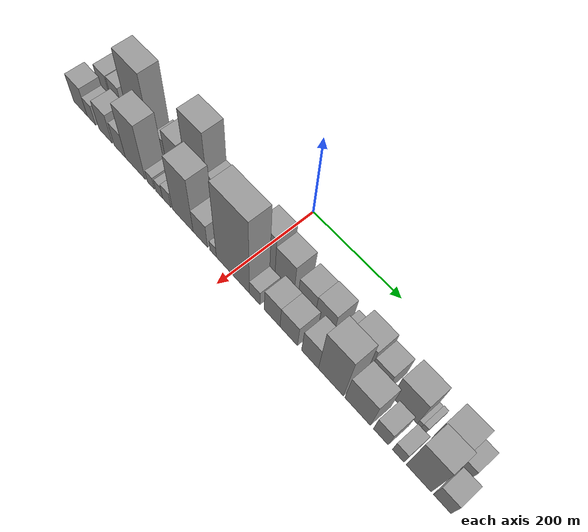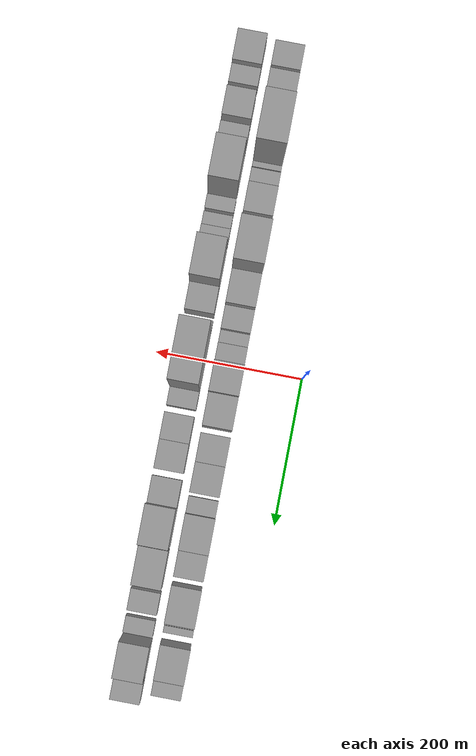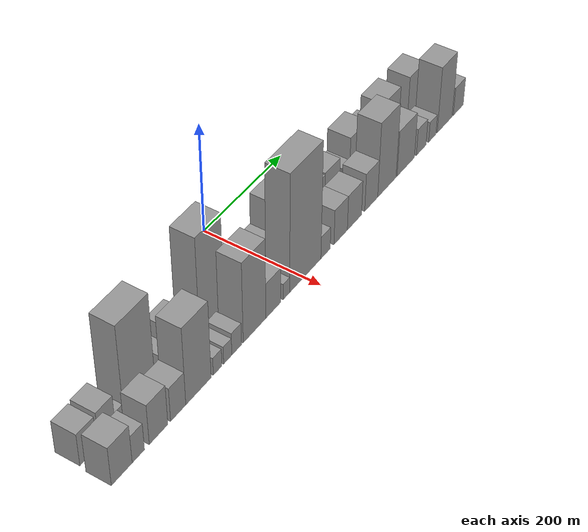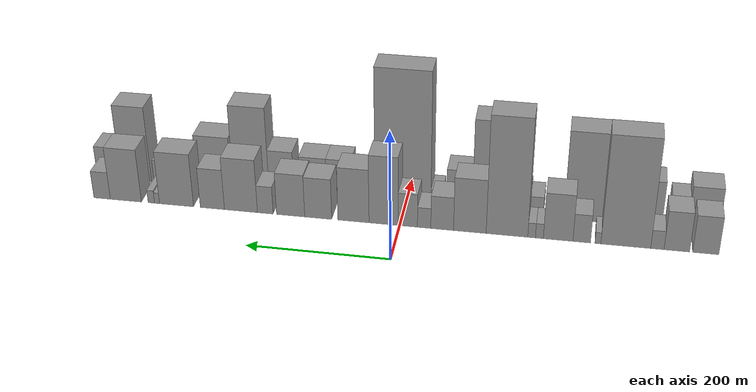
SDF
<sdf version="1.6">
 <world name="default">
  <scene>
   <sky><clouds><speed>12</speed></clouds></sky>
   <ambient>0.4 0.4 0.4 1</ambient>
   <background>0.7 0.7 0.7 1</background>
   <shadows>1</shadows>
  </scene>
  <gravity>0 0 -9.8066</gravity>
  <magnetic_field>6e-06 2.3e-05 -4.2e-05</magnetic_field>
  <physics default="0" name="default_physics" type="ode">
   <ode>
    <solver>
     <type>quick</type>
     <iters>10</iters>
     <sor>1.0</sor>
     <use_dynamic_moi_rescaling>0</use_dynamic_moi_rescaling>
    </solver>
    <constraints>
     <cfm>0</cfm>
     <erp>0.2</erp>
     <contact_max_correcting_vel>100</contact_max_correcting_vel>
     <contact_surface_layer>0.001</contact_surface_layer>
    </constraints>
   </ode>
   <max_step_size>0.004</max_step_size>
   <real_time_factor>1</real_time_factor>
   <real_time_update_rate>250</real_time_update_rate>
  </physics>
  <light name="sun" type="directional">
   <pose>0 0 10 0 0 0</pose>
   <diffuse>0.8 0.8 0.8 1</diffuse>
   <specular>0.2 0.2 0.2 1</specular>
   <attenuation>
    <range>1000</range>
    <constant>0.9</constant>
    <linear>0.01</linear>
    <quadratic>0.001</quadratic>
   </attenuation>
   <direction>-0.5 0.1 -0.9</direction>
  </light>
  <model name="building_1">
   <static>1</static>
   <pose>100.0000 -418.6548 0 0.000000 0.000000 0.000000</pose>
   <link name="link">
    <pose>0 0 30.00 0 0 0</pose>
    <collision name="collision"><geometry><box><size>40.0000 34.6905 60.0000</size></box></geometry></collision>
    <visual name="visual">
     <cast_shadows>0</cast_shadows>
     <geometry><box><size>40.0000 34.6905 60.0000</size></box></geometry>
     <material>
      <script>
       <uri>model://grey_wall/materials/scripts</uri>
       <uri>model://grey_wall/materials/textures</uri>
       <name>vrc/grey_wall</name>
      </script>
     </material>
    </visual>
   </link>
  </model>
  <model name="building_2">
   <static>1</static>
   <pose>100.0000 -380.2245 0 0.000000 0.000000 0.000000</pose>
   <link name="link">
    <pose>0 0 31.50 0 0 0</pose>
    <collision name="collision"><geometry><box><size>40.0000 34.1700 63.0000</size></box></geometry></collision>
    <visual name="visual">
     <cast_shadows>0</cast_shadows>
     <geometry><box><size>40.0000 34.1700 63.0000</size></box></geometry>
     <material>
      <script>
       <uri>model://grey_wall/materials/scripts</uri>
       <uri>model://grey_wall/materials/textures</uri>
       <name>vrc/grey_wall</name>
      </script>
     </material>
    </visual>
   </link>
  </model>
  <model name="building_3">
   <static>1</static>
   <pose>100.0000 -354.2400 0 0.000000 0.000000 0.000000</pose>
   <link name="link">
    <pose>0 0 15.00 0 0 0</pose>
    <collision name="collision"><geometry><box><size>40.0000 17.7990 30.0000</size></box></geometry></collision>
    <visual name="visual">
     <cast_shadows>0</cast_shadows>
     <geometry><box><size>40.0000 17.7990 30.0000</size></box></geometry>
     <material>
      <script>
       <uri>model://grey_wall/materials/scripts</uri>
       <uri>model://grey_wall/materials/textures</uri>
       <name>vrc/grey_wall</name>
      </script>
     </material>
    </visual>
   </link>
  </model>
  <model name="building_4">
   <static>1</static>
   <pose>100.0000 -311.7143 0 0.000000 0.000000 0.000000</pose>
   <link name="link">
    <pose>0 0 87.00 0 0 0</pose>
    <collision name="collision"><geometry><box><size>40.0000 67.2525 174.0000</size></box></geometry></collision>
    <visual name="visual">
     <cast_shadows>0</cast_shadows>
     <geometry><box><size>40.0000 67.2525 174.0000</size></box></geometry>
     <material>
      <script>
       <uri>model://grey_wall/materials/scripts</uri>
       <uri>model://grey_wall/materials/textures</uri>
       <name>vrc/grey_wall</name>
      </script>
     </material>
    </visual>
   </link>
  </model>
  <model name="building_5">
   <static>1</static>
   <pose>100.0000 -274.0974 0 0.000000 0.000000 0.000000</pose>
   <link name="link">
    <pose>0 0 9.00 0 0 0</pose>
    <collision name="collision"><geometry><box><size>40.0000 7.9812 18.0000</size></box></geometry></collision>
    <visual name="visual">
     <cast_shadows>0</cast_shadows>
     <geometry><box><size>40.0000 7.9812 18.0000</size></box></geometry>
     <material>
      <script>
       <uri>model://grey_wall/materials/scripts</uri>
       <uri>model://grey_wall/materials/textures</uri>
       <name>vrc/grey_wall</name>
      </script>
     </material>
    </visual>
   </link>
  </model>
  <model name="building_6">
   <static>1</static>
   <pose>100.0000 -252.1353 0 0.000000 0.000000 0.000000</pose>
   <link name="link">
    <pose>0 0 22.50 0 0 0</pose>
    <collision name="collision"><geometry><box><size>40.0000 23.9430 45.0000</size></box></geometry></collision>
    <visual name="visual">
     <cast_shadows>0</cast_shadows>
     <geometry><box><size>40.0000 23.9430 45.0000</size></box></geometry>
     <material>
      <script>
       <uri>model://grey_wall/materials/scripts</uri>
       <uri>model://grey_wall/materials/textures</uri>
       <name>vrc/grey_wall</name>
      </script>
     </material>
    </visual>
   </link>
  </model>
  <model name="building_7">
   <static>1</static>
   <pose>100.0000 -219.9529 0 0.000000 0.000000 0.000000</pose>
   <link name="link">
    <pose>0 0 37.50 0 0 0</pose>
    <collision name="collision"><geometry><box><size>40.0000 40.4219 75.0000</size></box></geometry></collision>
    <visual name="visual">
     <cast_shadows>0</cast_shadows>
     <geometry><box><size>40.0000 40.4219 75.0000</size></box></geometry>
     <material>
      <script>
       <uri>model://grey_wall/materials/scripts</uri>
       <uri>model://grey_wall/materials/textures</uri>
       <name>vrc/grey_wall</name>
      </script>
     </material>
    </visual>
   </link>
  </model>
  <model name="building_8">
   <static>1</static>
   <pose>100.0000 -194.3136 0 0.000000 0.000000 0.000000</pose>
   <link name="link">
    <pose>0 0 12.00 0 0 0</pose>
    <collision name="collision"><geometry><box><size>40.0000 10.8566 24.0000</size></box></geometry></collision>
    <visual name="visual">
     <cast_shadows>0</cast_shadows>
     <geometry><box><size>40.0000 10.8566 24.0000</size></box></geometry>
     <material>
      <script>
       <uri>model://grey_wall/materials/scripts</uri>
       <uri>model://grey_wall/materials/textures</uri>
       <name>vrc/grey_wall</name>
      </script>
     </material>
    </visual>
   </link>
  </model>
  <model name="building_9">
   <static>1</static>
   <pose>100.0000 -183.6284 0 0.000000 0.000000 0.000000</pose>
   <link name="link">
    <pose>0 0 12.00 0 0 0</pose>
    <collision name="collision"><geometry><box><size>40.0000 10.5139 24.0000</size></box></geometry></collision>
    <visual name="visual">
     <cast_shadows>0</cast_shadows>
     <geometry><box><size>40.0000 10.5139 24.0000</size></box></geometry>
     <material>
      <script>
       <uri>model://grey_wall/materials/scripts</uri>
       <uri>model://grey_wall/materials/textures</uri>
       <name>vrc/grey_wall</name>
      </script>
     </material>
    </visual>
   </link>
  </model>
  <model name="building_10">
   <static>1</static>
   <pose>100.0000 -149.5996 0 0.000000 0.000000 0.000000</pose>
   <link name="link">
    <pose>0 0 94.50 0 0 0</pose>
    <collision name="collision"><geometry><box><size>40.0000 57.5438 189.0000</size></box></geometry></collision>
    <visual name="visual">
     <cast_shadows>0</cast_shadows>
     <geometry><box><size>40.0000 57.5438 189.0000</size></box></geometry>
     <material>
      <script>
       <uri>model://grey_wall/materials/scripts</uri>
       <uri>model://grey_wall/materials/textures</uri>
       <name>vrc/grey_wall</name>
      </script>
     </material>
    </visual>
   </link>
  </model>
  <model name="building_11">
   <static>1</static>
   <pose>100.0000 -98.1262 0 0.000000 0.000000 0.000000</pose>
   <link name="link">
    <pose>0 0 43.50 0 0 0</pose>
    <collision name="collision"><geometry><box><size>40.0000 45.4030 87.0000</size></box></geometry></collision>
    <visual name="visual">
     <cast_shadows>0</cast_shadows>
     <geometry><box><size>40.0000 45.4030 87.0000</size></box></geometry>
     <material>
      <script>
       <uri>model://grey_wall/materials/scripts</uri>
       <uri>model://grey_wall/materials/textures</uri>
       <name>vrc/grey_wall</name>
      </script>
     </material>
    </visual>
   </link>
  </model>
  <model name="building_12">
   <static>1</static>
   <pose>100.0000 -59.4996 0 0.000000 0.000000 0.000000</pose>
   <link name="link">
    <pose>0 0 27.00 0 0 0</pose>
    <collision name="collision"><geometry><box><size>40.0000 31.8502 54.0000</size></box></geometry></collision>
    <visual name="visual">
     <cast_shadows>0</cast_shadows>
     <geometry><box><size>40.0000 31.8502 54.0000</size></box></geometry>
     <material>
      <script>
       <uri>model://grey_wall/materials/scripts</uri>
       <uri>model://grey_wall/materials/textures</uri>
       <name>vrc/grey_wall</name>
      </script>
     </material>
    </visual>
   </link>
  </model>
  <model name="building_13">
   <static>1</static>
   <pose>100.0000 -34.1499 0 0.000000 0.000000 0.000000</pose>
   <link name="link">
    <pose>0 0 16.50 0 0 0</pose>
    <collision name="collision"><geometry><box><size>40.0000 18.8490 33.0000</size></box></geometry></collision>
    <visual name="visual">
     <cast_shadows>0</cast_shadows>
     <geometry><box><size>40.0000 18.8490 33.0000</size></box></geometry>
     <material>
      <script>
       <uri>model://grey_wall/materials/scripts</uri>
       <uri>model://grey_wall/materials/textures</uri>
       <name>vrc/grey_wall</name>
      </script>
     </material>
    </visual>
   </link>
  </model>
  <model name="building_14">
   <static>1</static>
   <pose>100.0000 -11.1573 0 0.000000 0.000000 0.000000</pose>
   <link name="link">
    <pose>0 0 27.00 0 0 0</pose>
    <collision name="collision"><geometry><box><size>40.0000 27.1362 54.0000</size></box></geometry></collision>
    <visual name="visual">
     <cast_shadows>0</cast_shadows>
     <geometry><box><size>40.0000 27.1362 54.0000</size></box></geometry>
     <material>
      <script>
       <uri>model://grey_wall/materials/scripts</uri>
       <uri>model://grey_wall/materials/textures</uri>
       <name>vrc/grey_wall</name>
      </script>
     </material>
    </visual>
   </link>
  </model>
  <model name="building_15">
   <static>1</static>
   <pose>100.0000 23.0573 0 0.000000 0.000000 0.000000</pose>
   <link name="link">
    <pose>0 0 55.50 0 0 0</pose>
    <collision name="collision"><geometry><box><size>40.0000 41.2931 111.0000</size></box></geometry></collision>
    <visual name="visual">
     <cast_shadows>0</cast_shadows>
     <geometry><box><size>40.0000 41.2931 111.0000</size></box></geometry>
     <material>
      <script>
       <uri>model://grey_wall/materials/scripts</uri>
       <uri>model://grey_wall/materials/textures</uri>
       <name>vrc/grey_wall</name>
      </script>
     </material>
    </visual>
   </link>
  </model>
  <model name="building_16">
   <static>1</static>
   <pose>100.0000 65.8963 0 0.000000 0.000000 0.000000</pose>
   <link name="link">
    <pose>0 0 43.50 0 0 0</pose>
    <collision name="collision"><geometry><box><size>40.0000 44.3848 87.0000</size></box></geometry></collision>
    <visual name="visual">
     <cast_shadows>0</cast_shadows>
     <geometry><box><size>40.0000 44.3848 87.0000</size></box></geometry>
     <material>
      <script>
       <uri>model://grey_wall/materials/scripts</uri>
       <uri>model://grey_wall/materials/textures</uri>
       <name>vrc/grey_wall</name>
      </script>
     </material>
    </visual>
   </link>
  </model>
  <model name="building_17">
   <static>1</static>
   <pose>100.0000 116.5243 0 0.000000 0.000000 0.000000</pose>
   <link name="link">
    <pose>0 0 33.00 0 0 0</pose>
    <collision name="collision"><geometry><box><size>40.0000 38.8712 66.0000</size></box></geometry></collision>
    <visual name="visual">
     <cast_shadows>0</cast_shadows>
     <geometry><box><size>40.0000 38.8712 66.0000</size></box></geometry>
     <material>
      <script>
       <uri>model://grey_wall/materials/scripts</uri>
       <uri>model://grey_wall/materials/textures</uri>
       <name>vrc/grey_wall</name>
      </script>
     </material>
    </visual>
   </link>
  </model>
  <model name="building_18">
   <static>1</static>
   <pose>100.0000 156.2910 0 0.000000 0.000000 0.000000</pose>
   <link name="link">
    <pose>0 0 34.50 0 0 0</pose>
    <collision name="collision"><geometry><box><size>40.0000 40.6621 69.0000</size></box></geometry></collision>
    <visual name="visual">
     <cast_shadows>0</cast_shadows>
     <geometry><box><size>40.0000 40.6621 69.0000</size></box></geometry>
     <material>
      <script>
       <uri>model://grey_wall/materials/scripts</uri>
       <uri>model://grey_wall/materials/textures</uri>
       <name>vrc/grey_wall</name>
      </script>
     </material>
    </visual>
   </link>
  </model>
  <model name="building_19">
   <static>1</static>
   <pose>100.0000 193.0398 0 0.000000 0.000000 0.000000</pose>
   <link name="link">
    <pose>0 0 22.50 0 0 0</pose>
    <collision name="collision"><geometry><box><size>40.0000 22.8355 45.0000</size></box></geometry></collision>
    <visual name="visual">
     <cast_shadows>0</cast_shadows>
     <geometry><box><size>40.0000 22.8355 45.0000</size></box></geometry>
     <material>
      <script>
       <uri>model://grey_wall/materials/scripts</uri>
       <uri>model://grey_wall/materials/textures</uri>
       <name>vrc/grey_wall</name>
      </script>
     </material>
    </visual>
   </link>
  </model>
  <model name="building_20">
   <static>1</static>
   <pose>100.0000 228.5631 0 0.000000 0.000000 0.000000</pose>
   <link name="link">
    <pose>0 0 43.50 0 0 0</pose>
    <collision name="collision"><geometry><box><size>40.0000 48.2111 87.0000</size></box></geometry></collision>
    <visual name="visual">
     <cast_shadows>0</cast_shadows>
     <geometry><box><size>40.0000 48.2111 87.0000</size></box></geometry>
     <material>
      <script>
       <uri>model://grey_wall/materials/scripts</uri>
       <uri>model://grey_wall/materials/textures</uri>
       <name>vrc/grey_wall</name>
      </script>
     </material>
    </visual>
   </link>
  </model>
  <model name="building_21">
   <static>1</static>
   <pose>100.0000 270.4774 0 0.000000 0.000000 0.000000</pose>
   <link name="link">
    <pose>0 0 33.00 0 0 0</pose>
    <collision name="collision"><geometry><box><size>40.0000 35.6177 66.0000</size></box></geometry></collision>
    <visual name="visual">
     <cast_shadows>0</cast_shadows>
     <geometry><box><size>40.0000 35.6177 66.0000</size></box></geometry>
     <material>
      <script>
       <uri>model://grey_wall/materials/scripts</uri>
       <uri>model://grey_wall/materials/textures</uri>
       <name>vrc/grey_wall</name>
      </script>
     </material>
    </visual>
   </link>
  </model>
  <model name="building_22">
   <static>1</static>
   <pose>100.0000 323.5534 0 0.000000 0.000000 0.000000</pose>
   <link name="link">
    <pose>0 0 43.50 0 0 0</pose>
    <collision name="collision"><geometry><box><size>40.0000 50.5343 87.0000</size></box></geometry></collision>
    <visual name="visual">
     <cast_shadows>0</cast_shadows>
     <geometry><box><size>40.0000 50.5343 87.0000</size></box></geometry>
     <material>
      <script>
       <uri>model://grey_wall/materials/scripts</uri>
       <uri>model://grey_wall/materials/textures</uri>
       <name>vrc/grey_wall</name>
      </script>
     </material>
    </visual>
   </link>
  </model>
  <model name="building_23">
   <static>1</static>
   <pose>100.0000 352.5017 0 0.000000 0.000000 0.000000</pose>
   <link name="link">
    <pose>0 0 9.00 0 0 0</pose>
    <collision name="collision"><geometry><box><size>40.0000 7.3623 18.0000</size></box></geometry></collision>
    <visual name="visual">
     <cast_shadows>0</cast_shadows>
     <geometry><box><size>40.0000 7.3623 18.0000</size></box></geometry>
     <material>
      <script>
       <uri>model://grey_wall/materials/scripts</uri>
       <uri>model://grey_wall/materials/textures</uri>
       <name>vrc/grey_wall</name>
      </script>
     </material>
    </visual>
   </link>
  </model>
  <model name="building_24">
   <static>1</static>
   <pose>100.0000 360.9782 0 0.000000 0.000000 0.000000</pose>
   <link name="link">
    <pose>0 0 10.50 0 0 0</pose>
    <collision name="collision"><geometry><box><size>40.0000 9.5906 21.0000</size></box></geometry></collision>
    <visual name="visual">
     <cast_shadows>0</cast_shadows>
     <geometry><box><size>40.0000 9.5906 21.0000</size></box></geometry>
     <material>
      <script>
       <uri>model://grey_wall/materials/scripts</uri>
       <uri>model://grey_wall/materials/textures</uri>
       <name>vrc/grey_wall</name>
      </script>
     </material>
    </visual>
   </link>
  </model>
  <model name="building_25">
   <static>1</static>
   <pose>100.0000 399.0694 0 0.000000 0.000000 0.000000</pose>
   <link name="link">
    <pose>0 0 43.50 0 0 0</pose>
    <collision name="collision"><geometry><box><size>40.0000 46.5919 87.0000</size></box></geometry></collision>
    <visual name="visual">
     <cast_shadows>0</cast_shadows>
     <geometry><box><size>40.0000 46.5919 87.0000</size></box></geometry>
     <material>
      <script>
       <uri>model://grey_wall/materials/scripts</uri>
       <uri>model://grey_wall/materials/textures</uri>
       <name>vrc/grey_wall</name>
      </script>
     </material>
    </visual>
   </link>
  </model>
  <model name="building_26">
   <static>1</static>
   <pose>100.0000 434.7052 0 0.000000 0.000000 0.000000</pose>
   <link name="link">
    <pose>0 0 22.50 0 0 0</pose>
    <collision name="collision"><geometry><box><size>40.0000 24.6798 45.0000</size></box></geometry></collision>
    <visual name="visual">
     <cast_shadows>0</cast_shadows>
     <geometry><box><size>40.0000 24.6798 45.0000</size></box></geometry>
     <material>
      <script>
       <uri>model://grey_wall/materials/scripts</uri>
       <uri>model://grey_wall/materials/textures</uri>
       <name>vrc/grey_wall</name>
      </script>
     </material>
    </visual>
   </link>
  </model>
  <model name="building_27">
   <static>1</static>
   <pose>152.0000 -417.7005 0 0.000000 0.000000 0.000000</pose>
   <link name="link">
    <pose>0 0 36.00 0 0 0</pose>
    <collision name="collision"><geometry><box><size>40.0000 42.5990 72.0000</size></box></geometry></collision>
    <visual name="visual">
     <cast_shadows>0</cast_shadows>
     <geometry><box><size>40.0000 42.5990 72.0000</size></box></geometry>
     <material>
      <script>
       <uri>model://grey_wall/materials/scripts</uri>
       <uri>model://grey_wall/materials/textures</uri>
       <name>vrc/grey_wall</name>
      </script>
     </material>
    </visual>
   </link>
  </model>
  <model name="building_28">
   <static>1</static>
   <pose>152.0000 -383.5710 0 0.000000 0.000000 0.000000</pose>
   <link name="link">
    <pose>0 0 25.50 0 0 0</pose>
    <collision name="collision"><geometry><box><size>40.0000 25.6600 51.0000</size></box></geometry></collision>
    <visual name="visual">
     <cast_shadows>0</cast_shadows>
     <geometry><box><size>40.0000 25.6600 51.0000</size></box></geometry>
     <material>
      <script>
       <uri>model://grey_wall/materials/scripts</uri>
       <uri>model://grey_wall/materials/textures</uri>
       <name>vrc/grey_wall</name>
      </script>
     </material>
    </visual>
   </link>
  </model>
  <model name="building_29">
   <static>1</static>
   <pose>152.0000 -340.9190 0 0.000000 0.000000 0.000000</pose>
   <link name="link">
    <pose>0 0 37.50 0 0 0</pose>
    <collision name="collision"><geometry><box><size>40.0000 39.6438 75.0000</size></box></geometry></collision>
    <visual name="visual">
     <cast_shadows>0</cast_shadows>
     <geometry><box><size>40.0000 39.6438 75.0000</size></box></geometry>
     <material>
      <script>
       <uri>model://grey_wall/materials/scripts</uri>
       <uri>model://grey_wall/materials/textures</uri>
       <name>vrc/grey_wall</name>
      </script>
     </material>
    </visual>
   </link>
  </model>
  <model name="building_30">
   <static>1</static>
   <pose>152.0000 -298.5035 0 0.000000 0.000000 0.000000</pose>
   <link name="link">
    <pose>0 0 31.50 0 0 0</pose>
    <collision name="collision"><geometry><box><size>40.0000 33.1872 63.0000</size></box></geometry></collision>
    <visual name="visual">
     <cast_shadows>0</cast_shadows>
     <geometry><box><size>40.0000 33.1872 63.0000</size></box></geometry>
     <material>
      <script>
       <uri>model://grey_wall/materials/scripts</uri>
       <uri>model://grey_wall/materials/textures</uri>
       <name>vrc/grey_wall</name>
      </script>
     </material>
    </visual>
   </link>
  </model>
  <model name="building_31">
   <static>1</static>
   <pose>152.0000 -253.5071 0 0.000000 0.000000 0.000000</pose>
   <link name="link">
    <pose>0 0 72.00 0 0 0</pose>
    <collision name="collision"><geometry><box><size>40.0000 56.8056 144.0000</size></box></geometry></collision>
    <visual name="visual">
     <cast_shadows>0</cast_shadows>
     <geometry><box><size>40.0000 56.8056 144.0000</size></box></geometry>
     <material>
      <script>
       <uri>model://grey_wall/materials/scripts</uri>
       <uri>model://grey_wall/materials/textures</uri>
       <name>vrc/grey_wall</name>
      </script>
     </material>
    </visual>
   </link>
  </model>
  <model name="building_32">
   <static>1</static>
   <pose>152.0000 -210.2083 0 0.000000 0.000000 0.000000</pose>
   <link name="link">
    <pose>0 0 16.50 0 0 0</pose>
    <collision name="collision"><geometry><box><size>40.0000 19.7921 33.0000</size></box></geometry></collision>
    <visual name="visual">
     <cast_shadows>0</cast_shadows>
     <geometry><box><size>40.0000 19.7921 33.0000</size></box></geometry>
     <material>
      <script>
       <uri>model://grey_wall/materials/scripts</uri>
       <uri>model://grey_wall/materials/textures</uri>
       <name>vrc/grey_wall</name>
      </script>
     </material>
    </visual>
   </link>
  </model>
  <model name="building_33">
   <static>1</static>
   <pose>152.0000 -186.8155 0 0.000000 0.000000 0.000000</pose>
   <link name="link">
    <pose>0 0 16.50 0 0 0</pose>
    <collision name="collision"><geometry><box><size>40.0000 18.9934 33.0000</size></box></geometry></collision>
    <visual name="visual">
     <cast_shadows>0</cast_shadows>
     <geometry><box><size>40.0000 18.9934 33.0000</size></box></geometry>
     <material>
      <script>
       <uri>model://grey_wall/materials/scripts</uri>
       <uri>model://grey_wall/materials/textures</uri>
       <name>vrc/grey_wall</name>
      </script>
     </material>
    </visual>
   </link>
  </model>
  <model name="building_34">
   <static>1</static>
   <pose>152.0000 -165.8773 0 0.000000 0.000000 0.000000</pose>
   <link name="link">
    <pose>0 0 21.00 0 0 0</pose>
    <collision name="collision"><geometry><box><size>40.0000 22.8831 42.0000</size></box></geometry></collision>
    <visual name="visual">
     <cast_shadows>0</cast_shadows>
     <geometry><box><size>40.0000 22.8831 42.0000</size></box></geometry>
     <material>
      <script>
       <uri>model://grey_wall/materials/scripts</uri>
       <uri>model://grey_wall/materials/textures</uri>
       <name>vrc/grey_wall</name>
      </script>
     </material>
    </visual>
   </link>
  </model>
  <model name="building_35">
   <static>1</static>
   <pose>152.0000 -123.1055 0 0.000000 0.000000 0.000000</pose>
   <link name="link">
    <pose>0 0 75.00 0 0 0</pose>
    <collision name="collision"><geometry><box><size>40.0000 54.6605 150.0000</size></box></geometry></collision>
    <visual name="visual">
     <cast_shadows>0</cast_shadows>
     <geometry><box><size>40.0000 54.6605 150.0000</size></box></geometry>
     <material>
      <script>
       <uri>model://grey_wall/materials/scripts</uri>
       <uri>model://grey_wall/materials/textures</uri>
       <name>vrc/grey_wall</name>
      </script>
     </material>
    </visual>
   </link>
  </model>
  <model name="building_36">
   <static>1</static>
   <pose>152.0000 -77.3040 0 0.000000 0.000000 0.000000</pose>
   <link name="link">
    <pose>0 0 33.00 0 0 0</pose>
    <collision name="collision"><geometry><box><size>40.0000 36.9426 66.0000</size></box></geometry></collision>
    <visual name="visual">
     <cast_shadows>0</cast_shadows>
     <geometry><box><size>40.0000 36.9426 66.0000</size></box></geometry>
     <material>
      <script>
       <uri>model://grey_wall/materials/scripts</uri>
       <uri>model://grey_wall/materials/textures</uri>
       <name>vrc/grey_wall</name>
      </script>
     </material>
    </visual>
   </link>
  </model>
  <model name="building_37">
   <static>1</static>
   <pose>152.0000 -44.6524 0 0.000000 0.000000 0.000000</pose>
   <link name="link">
    <pose>0 0 15.00 0 0 0</pose>
    <collision name="collision"><geometry><box><size>40.0000 16.3605 30.0000</size></box></geometry></collision>
    <visual name="visual">
     <cast_shadows>0</cast_shadows>
     <geometry><box><size>40.0000 16.3605 30.0000</size></box></geometry>
     <material>
      <script>
       <uri>model://grey_wall/materials/scripts</uri>
       <uri>model://grey_wall/materials/textures</uri>
       <name>vrc/grey_wall</name>
      </script>
     </material>
    </visual>
   </link>
  </model>
  <model name="building_38">
   <static>1</static>
   <pose>152.0000 3.8814 0 0.000000 0.000000 0.000000</pose>
   <link name="link">
    <pose>0 0 109.50 0 0 0</pose>
    <collision name="collision"><geometry><box><size>40.0000 80.7070 219.0000</size></box></geometry></collision>
    <visual name="visual">
     <cast_shadows>0</cast_shadows>
     <geometry><box><size>40.0000 80.7070 219.0000</size></box></geometry>
     <material>
      <script>
       <uri>model://grey_wall/materials/scripts</uri>
       <uri>model://grey_wall/materials/textures</uri>
       <name>vrc/grey_wall</name>
      </script>
     </material>
    </visual>
   </link>
  </model>
  <model name="building_39">
   <static>1</static>
   <pose>152.0000 56.6409 0 0.000000 0.000000 0.000000</pose>
   <link name="link">
    <pose>0 0 21.00 0 0 0</pose>
    <collision name="collision"><geometry><box><size>40.0000 24.8120 42.0000</size></box></geometry></collision>
    <visual name="visual">
     <cast_shadows>0</cast_shadows>
     <geometry><box><size>40.0000 24.8120 42.0000</size></box></geometry>
     <material>
      <script>
       <uri>model://grey_wall/materials/scripts</uri>
       <uri>model://grey_wall/materials/textures</uri>
       <name>vrc/grey_wall</name>
      </script>
     </material>
    </visual>
   </link>
  </model>
  <model name="building_40">
   <static>1</static>
   <pose>152.0000 97.1873 0 0.000000 0.000000 0.000000</pose>
   <link name="link">
    <pose>0 0 33.00 0 0 0</pose>
    <collision name="collision"><geometry><box><size>40.0000 36.2808 66.0000</size></box></geometry></collision>
    <visual name="visual">
     <cast_shadows>0</cast_shadows>
     <geometry><box><size>40.0000 36.2808 66.0000</size></box></geometry>
     <material>
      <script>
       <uri>model://grey_wall/materials/scripts</uri>
       <uri>model://grey_wall/materials/textures</uri>
       <name>vrc/grey_wall</name>
      </script>
     </material>
    </visual>
   </link>
  </model>
  <model name="building_41">
   <static>1</static>
   <pose>152.0000 134.9564 0 0.000000 0.000000 0.000000</pose>
   <link name="link">
    <pose>0 0 33.00 0 0 0</pose>
    <collision name="collision"><geometry><box><size>40.0000 39.2573 66.0000</size></box></geometry></collision>
    <visual name="visual">
     <cast_shadows>0</cast_shadows>
     <geometry><box><size>40.0000 39.2573 66.0000</size></box></geometry>
     <material>
      <script>
       <uri>model://grey_wall/materials/scripts</uri>
       <uri>model://grey_wall/materials/textures</uri>
       <name>vrc/grey_wall</name>
      </script>
     </material>
    </visual>
   </link>
  </model>
  <model name="building_42">
   <static>1</static>
   <pose>152.0000 181.9588 0 0.000000 0.000000 0.000000</pose>
   <link name="link">
    <pose>0 0 36.00 0 0 0</pose>
    <collision name="collision"><geometry><box><size>40.0000 36.7475 72.0000</size></box></geometry></collision>
    <visual name="visual">
     <cast_shadows>0</cast_shadows>
     <geometry><box><size>40.0000 36.7475 72.0000</size></box></geometry>
     <material>
      <script>
       <uri>model://grey_wall/materials/scripts</uri>
       <uri>model://grey_wall/materials/textures</uri>
       <name>vrc/grey_wall</name>
      </script>
     </material>
    </visual>
   </link>
  </model>
  <model name="building_43">
   <static>1</static>
   <pose>152.0000 226.8278 0 0.000000 0.000000 0.000000</pose>
   <link name="link">
    <pose>0 0 70.50 0 0 0</pose>
    <collision name="collision"><geometry><box><size>40.0000 52.9904 141.0000</size></box></geometry></collision>
    <visual name="visual">
     <cast_shadows>0</cast_shadows>
     <geometry><box><size>40.0000 52.9904 141.0000</size></box></geometry>
     <material>
      <script>
       <uri>model://grey_wall/materials/scripts</uri>
       <uri>model://grey_wall/materials/textures</uri>
       <name>vrc/grey_wall</name>
      </script>
     </material>
    </visual>
   </link>
  </model>
  <model name="building_44">
   <static>1</static>
   <pose>152.0000 282.2522 0 0.000000 0.000000 0.000000</pose>
   <link name="link">
    <pose>0 0 43.50 0 0 0</pose>
    <collision name="collision"><geometry><box><size>40.0000 51.8585 87.0000</size></box></geometry></collision>
    <visual name="visual">
     <cast_shadows>0</cast_shadows>
     <geometry><box><size>40.0000 51.8585 87.0000</size></box></geometry>
     <material>
      <script>
       <uri>model://grey_wall/materials/scripts</uri>
       <uri>model://grey_wall/materials/textures</uri>
       <name>vrc/grey_wall</name>
      </script>
     </material>
    </visual>
   </link>
  </model>
  <model name="building_45">
   <static>1</static>
   <pose>152.0000 328.8322 0 0.000000 0.000000 0.000000</pose>
   <link name="link">
    <pose>0 0 25.50 0 0 0</pose>
    <collision name="collision"><geometry><box><size>40.0000 29.3015 51.0000</size></box></geometry></collision>
    <visual name="visual">
     <cast_shadows>0</cast_shadows>
     <geometry><box><size>40.0000 29.3015 51.0000</size></box></geometry>
     <material>
      <script>
       <uri>model://grey_wall/materials/scripts</uri>
       <uri>model://grey_wall/materials/textures</uri>
       <name>vrc/grey_wall</name>
      </script>
     </material>
    </visual>
   </link>
  </model>
  <model name="building_46">
   <static>1</static>
   <pose>152.0000 362.7409 0 0.000000 0.000000 0.000000</pose>
   <link name="link">
    <pose>0 0 19.50 0 0 0</pose>
    <collision name="collision"><geometry><box><size>40.0000 22.5157 39.0000</size></box></geometry></collision>
    <visual name="visual">
     <cast_shadows>0</cast_shadows>
     <geometry><box><size>40.0000 22.5157 39.0000</size></box></geometry>
     <material>
      <script>
       <uri>model://grey_wall/materials/scripts</uri>
       <uri>model://grey_wall/materials/textures</uri>
       <name>vrc/grey_wall</name>
      </script>
     </material>
    </visual>
   </link>
  </model>
  <model name="building_47">
   <static>1</static>
   <pose>152.0000 401.4440 0 0.000000 0.000000 0.000000</pose>
   <link name="link">
    <pose>0 0 63.00 0 0 0</pose>
    <collision name="collision"><geometry><box><size>40.0000 46.8905 126.0000</size></box></geometry></collision>
    <visual name="visual">
     <cast_shadows>0</cast_shadows>
     <geometry><box><size>40.0000 46.8905 126.0000</size></box></geometry>
     <material>
      <script>
       <uri>model://grey_wall/materials/scripts</uri>
       <uri>model://grey_wall/materials/textures</uri>
       <name>vrc/grey_wall</name>
      </script>
     </material>
    </visual>
   </link>
  </model>
  <model name="building_48">
   <static>1</static>
   <pose>152.0000 444.9275 0 0.000000 0.000000 0.000000</pose>
   <link name="link">
    <pose>0 0 27.00 0 0 0</pose>
    <collision name="collision"><geometry><box><size>40.0000 32.0766 54.0000</size></box></geometry></collision>
    <visual name="visual">
     <cast_shadows>0</cast_shadows>
     <geometry><box><size>40.0000 32.0766 54.0000</size></box></geometry>
     <material>
      <script>
       <uri>model://grey_wall/materials/scripts</uri>
       <uri>model://grey_wall/materials/textures</uri>
       <name>vrc/grey_wall</name>
      </script>
     </material>
    </visual>
   </link>
  </model>
 </world>
</sdf>
